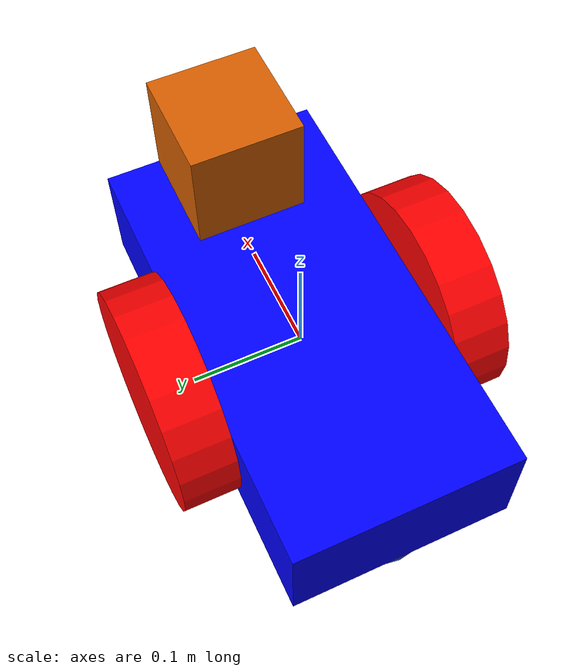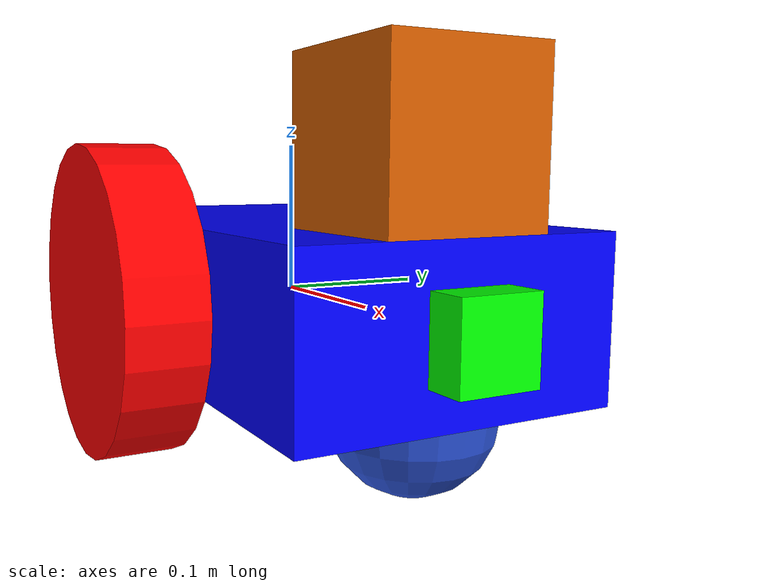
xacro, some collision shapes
<robot name="robo_seeker"
    xmlns:xacro="http://www.ros.org/wiki/xacro">

    <link name="robot_footprint"></link>

    <link name='chassis'>
        <inertial>
            <mass value="15.0"/>
            <origin xyz="0.0 0 0" rpy=" 0 0 0"/>
            <inertia ixx="0.1" ixy="0" ixz="0" iyy="0.1" iyz="0" izz="0.1" />
        </inertial>
        <collision name='collision'>
            <origin xyz="0 0 0" rpy=" 0 0 0"/>
            <geometry>
                <box size=".4 .2 .1"/>
            </geometry>
        </collision>
        <visual name='chassis_visual'>
            <origin xyz="0 0 0" rpy=" 0 0 0"/>
            <geometry>
                <box size=".4 .2 .1"/>
            </geometry>
            <material name="blue">
                <color rgba="0 0 1 1"/>
            </material>
        </visual>
        <collision name='back_caster_collision'>
            <origin xyz="-0.15 0 -0.05" rpy=" 0 0 0"/>
            <geometry>
                <sphere radius="0.0499"/>
            </geometry>
        </collision>
        <visual name='back_caster_visual'>
            <origin xyz="-0.15 0 -0.05" rpy=" 0 0 0"/>
            <geometry>
                <sphere radius="0.05"/>
            </geometry>
        </visual>
        <collision name='front_caster_collision'>
            <origin xyz="0.15 0 -0.05" rpy=" 0 0 0"/>
            <geometry>
                <sphere radius="0.0499"/>
            </geometry>
        </collision>

        <visual name='front_caster_visual'>
            <origin xyz="0.15 0 -0.05" rpy=" 0 0 0"/>
            <geometry>
                <sphere radius="0.05"/>
            </geometry>
        </visual>
    </link>

    <link name="right_wheel_link">
        <visual>
            <origin xyz="0 0 0" rpy=" 0 1.5707 1.5707"/>
            <geometry>
                <cylinder radius="0.1" length="0.05"/>
            </geometry>
            <material name="red">
                <color rgba="1 0 0 1"/>
            </material>
        </visual>
        <collision>
            <origin xyz="0 0 0" rpy=" 0 1.5707 1.5707"/>
            <geometry>
                <cylinder radius="0.1" length="0.05"/>
            </geometry>
        </collision>
        <inertial>
            <mass value="5.0"/>
            <origin xyz="0 0 0" rpy=" 0 1.5707 1.5707"/>
            <inertia ixx="0.1" ixy="0" ixz="0" iyy="0.1" iyz="0" izz="0.1" />
        </inertial>
    </link>

    <link name="left_wheel_link">
        <visual>
            <origin xyz="0 0 0" rpy=" 0 1.5707 1.5707"/>
            <geometry>
                <cylinder radius="0.1" length="0.05"/>
            </geometry>
            <material name="red"/>
        </visual>
        <collision>
            <origin xyz="0 0 0" rpy=" 0 1.5707 1.5707"/>
            <geometry>
                <cylinder radius="0.1" length="0.05"/>
            </geometry>
        </collision>
        <inertial>
            <mass value="5.0"/>
            <origin xyz="0 0 0" rpy=" 0 1.5707 1.5707"/>
            <inertia ixx="0.1" ixy="0" ixz="0" iyy="0.1" iyz="0" izz="0.1" />
        </inertial>
    </link>

    <link name="camera">
        <visual>
            <origin xyz="0 0 0" rpy=" 0 0 0"/>
            <geometry>
                <box size="0.05 0.05 0.05"/>
            </geometry>
            <material name="green">
                <color rgba="0 1 0 1"/>
            </material>
        </visual>
        <collision>
            <origin xyz="0 0 0" rpy=" 0 0 0"/>
            <geometry>
                <box size="0.05 0.05 0.05"/>
            </geometry>
        </collision>
        <inertial>
            <mass value="0.1"/>
            <origin xyz="0 0 0" rpy=" 0 0 0"/>
            <inertia ixx="1e-6" ixy="0" ixz="0" iyy="1e-6" iyz="0" izz="1e-6" />
        </inertial>
    </link>

    <link name="hokuyo">
        <visual>
            <origin xyz="0 0 0" rpy=" 0 0 0"/>
            <geometry>
                <mesh filename="package://ball_chaser_description/meshes/hokuyo.dae"/>
            </geometry>
        </visual>
        <collision>
            <origin xyz="0 0 0.0" rpy=" 0 0 0"/>
            <geometry>
                <box size="0.1 0.1 0.1"/>
            </geometry>
        </collision>
        <inertial>
            <mass value="1e-5"/>
            <origin xyz="0 0 0.0" rpy=" 0 0 0"/>
            <inertia ixx="1e-6" ixy="0" ixz="0" iyy="1e-6" iyz="0" izz="1e-6" />
        </inertial>
    </link>

    <joint name="robot_footprint_joint" type="fixed">
        <origin xyz="0 0 0" rpy="0 0 0" />
        <parent link="robot_footprint"/>
        <child link="chassis" />
    </joint>

    <joint type="continuous" name="right_wheel_hinge">
        <origin xyz="0 0.125 0" rpy="0 0 0"/>
        <child link="right_wheel_link"/>
        <parent link="chassis"/>
        <axis xyz="0 1 0" rpy="0 0 0"/>
        <limit effort="10000" velocity="1000"/>
        <dynamics damping="1.0" friction="1.0"/>
    </joint>

    <joint type="continuous" name="left_wheel_hinge">
        <origin xyz="0 -0.125 0" rpy="0 0 0"/>
        <child link="left_wheel_link"/>
        <parent link="chassis"/>
        <axis xyz="0 1 0" rpy="0 0 0"/>
        <limit effort="10000" velocity="1000"/>
        <dynamics damping="1.0" friction="1.0"/>
    </joint>

    <joint type="fixed" name="camera_joint">
        <origin xyz="0.2 0 0" rpy="0 0 0"/>
        <child link="camera"/>
        <parent link="chassis"/>
        <axis xyz="0 1 0" rpy="0 0 0"/>
    </joint>

    <joint type="fixed" name="hokuyo_joint">
        <origin xyz="0.15 0 0.1" rpy="0 0 0"/>
        <child link="hokuyo"/>
        <parent link="chassis"/>
        <axis xyz="0 1 0" rpy="0 0 0"/>
    </joint>

    <gazebo reference="chassis">
        <material>Gazebo/Blue</material>
    </gazebo>

    <gazebo reference="right_wheel_link">
        <material>Gazebo/Grey</material>
    </gazebo>

    <gazebo reference="left_wheel_link">
        <material>Gazebo/Grey</material>
    </gazebo>

    <gazebo>
        <plugin name="gazebo_ros_diff_drive" filename="libgazebo_ros_diff_drive.so">

            <update_rate>10</update_rate>

            <left_joint>left_wheel_hinge</left_joint>
            <right_joint>right_wheel_hinge</right_joint>

            <!-- kinematics -->
            <wheel_separation>0.4</wheel_separation>
            <wheel_diameter>0.2</wheel_diameter>

            <!-- output -->
            <publish_odom>true</publish_odom>
            <publish_odom_tf>true</publish_odom_tf>
            <publish_wheel_tf>true</publish_wheel_tf>

            <odometry_topic>odom</odometry_topic>
            <odometry_frame>odom</odometry_frame>
            <robot_base_frame>robot_footprint</robot_base_frame>

        </plugin>
    </gazebo>

    <gazebo reference="camera">
        <material>Gazebo/Grey</material>
        <sensor name="camera" type="camera">
            <pose>0 0 0 0 0 0</pose>
            <visualize>true</visualize>
            <update_rate>10.0</update_rate>
            <camera name="realsense_depth_camera">
                <horizontal_fov>1.46608</horizontal_fov>
                <image>
                    <width>800</width>
                    <height>800</height>
                    <format>R8G8B8</format>
                </image>
                <clip>
                    <near>0.02</near>
                    <far>300</far>
                </clip>
            </camera>
            <plugin name="camera_controller" filename="libgazebo_ros_camera.so">
                <ros>
                    <namespace>ball_chaser</namespace>
                    <remapping>image_raw:=camera_img</remapping>
                </ros>
                <frame_name>camera</frame_name>
                <hack_baseline>0.07</hack_baseline>
                <min_depth>0.05</min_depth>
                <max_depth>8.0</max_depth>
            </plugin>
        </sensor>
    </gazebo>

    <!-- hokuyo -->
    <gazebo reference="hokuyo">
        <sensor type="ray" name="head_hokuyo_sensor">
            <pose>0 0 0 0 0 0</pose>
            <visualize>false</visualize>
            <update_rate>40</update_rate>
            <ray>
                <scan>
                    <horizontal>
                        <samples>720</samples>
                        <resolution>1</resolution>
                        <min_angle>-1.570796</min_angle>
                        <max_angle>1.570796</max_angle>
                    </horizontal>
                </scan>
                <range>
                    <min>0.10</min>
                    <max>30.0</max>
                    <resolution>0.01</resolution>
                </range>
                <noise>
                    <type>gaussian</type>
                    <mean>0.0</mean>
                    <stddev>0.01</stddev>
                </noise>
            </ray>
            <plugin name="robo_seeker_laserscan" filename="libgazebo_ros_ray_sensor.so">
                <ros>
                    <remapping>~/out:=scan</remapping>
                </ros>
                <output_type>sensor_msgs/LaserScan</output_type>
                <frame_name>hokuyo</frame_name>
            </plugin>
        </sensor>
    </gazebo>

</robot>
